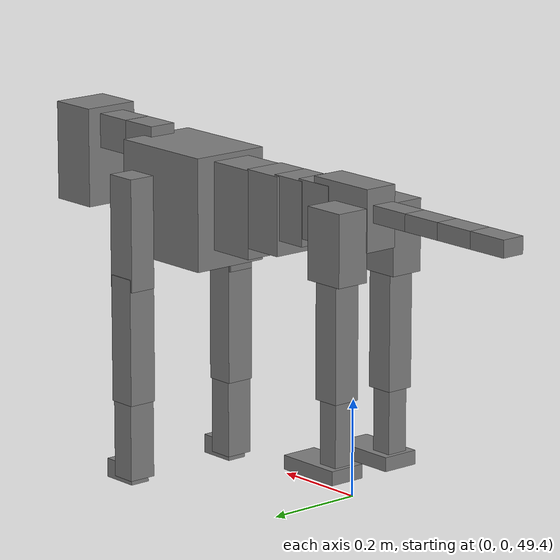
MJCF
<mujoco model="dog">

    <default>
        <joint armature="0.02" stiffness="1" damping="0.2" limited="true"/>
        <geom condim="3" friction="1 0.05 0.05" margin="0.01"/>
        <motor ctrllimited="true" ctrlrange="-1.0 1.0" forcelimited="true" gear="50"/>
    </default>

    <compiler inertiafromgeom="true" angle="radian"/>

    <option timestep="0.016" iterations="50" tolerance="1e-10" solver="Newton" jacobian="dense" cone="pyramidal"/>

    <size nconmax="20000" njmax="60000" nstack="5000000"/>
    <visual>
        <map force="0.1" zfar="30"/>
        <rgba haze="0.15 0.25 0.35 1"/>
        <quality shadowsize="2048"/>
        <global offwidth="800" offheight="800"/>
    </visual>

    <asset>
        <texture type="skybox" builtin="gradient" rgb1="0.3 0.5 0.7" rgb2="0 0 0" width="512" height="512"/>
        <texture name="texplane" type="2d" builtin="checker" rgb1=".2 .3 .4" rgb2=".1 0.15 0.2" width="512" height="512"
                 mark="cross" markrgb=".8 .8 .8"/>
        <texture name="texgeom" type="cube" builtin="flat" mark="cross" width="127" height="1278" rgb1="0.8 0.6 0.4"
                 rgb2="0.8 0.6 0.4" markrgb="1 1 1" random="0.01"/>

        <material name="matplane" reflectance="0.3" texture="texplane" texrepeat="1 1" texuniform="true"/>
        <material name="matgeom" texture="texgeom" texuniform="true" rgba="0.8 0.6 .4 1"/>
    </asset>

    <worldbody>
        <geom name="floor" pos="0 0 0" size="0 0 .25" type="plane" material="matplane" condim="3"/>

        <light directional="false" diffuse=".2 .2 .2" specular="0 0 0" pos="0 0 5" dir="0 0 -1" castshadow="false"/>
        <light mode="targetbodycom" target="torso" directional="false" diffuse=".8 .8 .8" specular="0.3 0.3 0.3"
               pos="0 0 4.0" dir="0 0 -1"/>

        <body name="root" pos="0 0 50">
            <freejoint name="root_1"/>
            <geom type="box" pos="0 0 -0.02" size="0.0774  0.0358  0.063" density="2030"/>

            <body name="spine1" pos="0.054 0 0">
                <joint name="spine1_y" axis="0 1 0" range="0 0.7" limited="true"/>
                <geom type="box" pos="0.02375 0 -0.03" size="0.04375  0.0375  0.05985" density="2030"/>

                <body name="spine2" pos="0.0612 0 0">
                    <joint name="spine2_y" axis="0 1 0" range="-0.15 0.15" limited="true"/>
                    <geom type="box" pos="0.03555  0  -0.04" size="0.04055  0.039  0.06615" density="2030"/>

                    <body name="spine3" pos="0.0730 0 0">
                        <joint name="spine3_y" axis="0 1 0" range="-0.15 0.15" limited="true"/>
                        <geom type="box" pos="0.03555  0  -0.057" size="0.04555  0.0445  0.081" density="2030"/>

                        <body name="spine4" pos="0.0780 0 0">
                            <joint name="spine4_y" axis="0 1 0" range="-0.15 0.15" limited="true"/>
                            <geom type="box" pos="0.05265  0  -0.07" size="0.05265  0.045  0.09135" density="2030"/>

                            <body name="torso" pos="0.1082 0 0">
                                <joint name="torso_y" axis="0 1 0" range="-0.15 0.15" limited="true"/>
                                <geom type="box" pos="0.11925  0  -0.085" size="0.11925  0.085  0.11745"
                                      density="2030"/>

                                <body name="neck1" pos="0.2160  0   0.0180">
                                    <joint name="neck1_y" axis="0 1 0" range="-1.2  -1" limited="true"/>
                                    <geom type="box" pos="0.0423  0  0" size="0.0423  0.03  0.036" density="2325"/>

                                    <body name="neck2" pos="0.0853  0  0">
                                        <joint name="neck2_y" axis="0 1 0" range="0.1  0" limited="true"/>
                                        <geom type="box" pos="0.0423  0  0" size="0.0423  0.03  0.036" density="2325"/>

                                        <body name="head" pos="0.0853  0  0">
                                            <joint name="head_y" axis="0 1 0" range="-0.3  -0.2" limited="true"/>
                                            <geom type="box" pos="0.0531  0  -0.055" size="0.0531  0.06  0.1044"
                                                  density="4030"/>

                                        </body>
                                    </body>
                                </body>

                                <body name="front_shoulder" pos="0.156  0   -0.0480">
                                    <joint name="front_shoulder_y" axis="0 1 0" range="-1 1.5" limited="true"/>
                                    <geom type="box" pos="0 0.13 -0.0910" size="0.0337  0.0288  0.1177" density="1158"/>
                                    <geom type="box" pos="0 -0.13 -0.0910" size="0.0337  0.0288  0.1177"
                                          density="1158"/>

                                    <body name="front_elbow" pos="0  0  -0.1821">
                                        <joint name="front_elbow_y" axis="0 1 0" range="-2 0" limited="true"/>
                                        <geom type="box" pos="0 0.13 -0.1335" size="0.0303  0.0309  0.1335"
                                              density="1081"/>
                                        <geom type="box" pos="0 -0.13 -0.1335" size="0.0303  0.0309  0.1335"
                                              density="1081"/>

                                        <body name="front_wrist" pos="0  0  -0.2670">
                                            <joint name="front_wrist_y" axis="0 1 0" range="-0.2 0" limited="true"/>
                                            <geom type="box" pos="0 0.13 -0.0741" size="0.0268  0.0298  0.0873"
                                                  density="1664"/>
                                            <geom type="box" pos="0 -0.13 -0.0741" size="0.0268  0.0298  0.0873"
                                                  density="1664"/>

                                            <body name="front_finger_end" pos="0  0  -0.1483">
                                                <joint name="front_finger_y" axis="0 1 0" range="-0.4 1"
                                                       limited="true"/>
                                                <geom type="box" pos="0.0218  0.13  -0.0049"
                                                      size="0.0400  0.0218  0.0199" density="1515"/>
                                                <geom type="box" pos="0.0218  -0.13  -0.0049"
                                                      size="0.0400  0.0218  0.0199" density="1515"/>

                                            </body>

                                        </body>
                                    </body>
                                </body>

                            </body>
                        </body>
                    </body>
                </body>
            </body>

            <body name="back_hip" pos="-0.03 0 -0.018">
                <joint name="back_hip_y" axis="0 1 0" range="-1.5 0.3" limited="true"/>
                <geom type="box" pos="0 0.07 -0.0506" size="0.0456  0.0358  0.0734" density="1154"/>
                <geom type="box" pos="0 -0.07 -0.0506" size="0.0456  0.0358  0.0734" density="1154"/>

                <body name="back_knee" pos="0  0  -0.1013">
                    <joint name="back_knee_y" axis="0 1 0" range="0 2.8" limited="true"/>
                    <geom type="box" pos="0 0.07 -0.1227" size="0.0291  0.0287  0.1383" density="1227"/>
                    <geom type="box" pos="0 -0.07 -0.1227" size="0.0291  0.0287  0.1383" density="1227"/>

                    <body name="back_ankle" pos="0  0  -0.2455">
                        <joint name="back_ankle_y" axis="0 1 0" range="-2.2 0" limited="true"/>
                        <geom type="box" pos="0 0.07 -0.0807" size="0.0225  0.0225  0.0919" density="1284"/>
                        <geom type="box" pos="0 -0.07 -0.0807" size="0.0225  0.0225  0.0919" density="1284"/>

                        <body name="back_toe_end" pos="0  0  -0.1613">
                            <joint name="back_toe_y" axis="0 1 0" range="-0.4 1" limited="true"/>
                            <geom type="box" pos="0.0392  0.07  0.0005" size="0.0719  0.0392  0.0145" density="1515"/>
                            <geom type="box" pos="0.0392  -0.07  0.0005" size="0.0719  0.0392  0.0145" density="1515"/>

                        </body>
                    </body>
                </body>
            </body>

            <body name="tail1" pos="-0.074 0 -0.006">
                <joint name="tail1_y" axis="0 1 0" range="-0.2 0.2" limited="true"/>
                <geom type="box" pos="-0.0536  0  0" size="0.045  0.025  0.0175" density="1587"/>

                <body name="tail2" pos="-0.09 0 0">
                    <joint name="tail2_y" axis="0 1 0" range="-0.2 0.2" limited="true"/>
                    <geom type="box" pos="-0.0536  0  0" size="0.045  0.025  0.0175" density="1587"/>

                    <body name="tail3" pos="-0.09 0 0">
                        <joint name="tail3_y" axis="0 1 0" range="-0.2 0.2" limited="true"/>
                        <geom type="box" pos="-0.0536  0  0" size="0.045  0.025  0.0175" density="1587"/>

                        <body name="tail4" pos="-0.09 0 0">
                            <joint name="tail4_y" axis="0 1 0" range="-0.2 0.2" limited="true"/>
                            <geom type="box" pos="-0.0536  0  0" size="0.045  0.025  0.0175" density="1587"/>

                        </body>
                    </body>
                </body>
            </body>
        </body>
    </worldbody>

    <actuator>
        <motor joint="spine1_y" forcerange="-150 150     "/>
        <motor joint="spine2_y" forcerange="-150 150     "/>
        <motor joint="spine3_y" forcerange="-150 150     "/>
        <motor joint="spine4_y" forcerange="-150 150     "/>
        <motor joint="torso_y" forcerange="-150 150     "/>
        <motor joint="neck1_y" forcerange="-100 100       "/>
        <motor joint="neck2_y" forcerange="-100 100       "/>
        <motor joint="head_y" forcerange="-150 150       "/>
        <motor joint="front_shoulder_y" forcerange="-100.21 191.72"/>
        <motor joint="front_elbow_y" forcerange="-198.63 126.36"/>
        <motor joint="front_wrist_y" forcerange="-103.96 134.17"/>
        <motor joint="front_finger_y" forcerange="-34.52 41.98"/>
        <motor joint="back_hip_y" forcerange="-398.15 278.67"/>
        <motor joint="back_knee_y" forcerange="-258.23 359.33"/>
        <motor joint="back_angle_y" forcerange="-70.14 189.22"/>
        <motor joint="back_toe_y" forcerange="-107.80 125.86"/>
        <motor joint="tail1_y" forcerange="-50 50     "/>
        <motor joint="tail2_y" forcerange="-50 50     "/>
        <motor joint="tail3_y" forcerange="-50 50     "/>
        <motor joint="tail4_y" forcerange="-50 50     "/>
    </actuator>
</mujoco>
